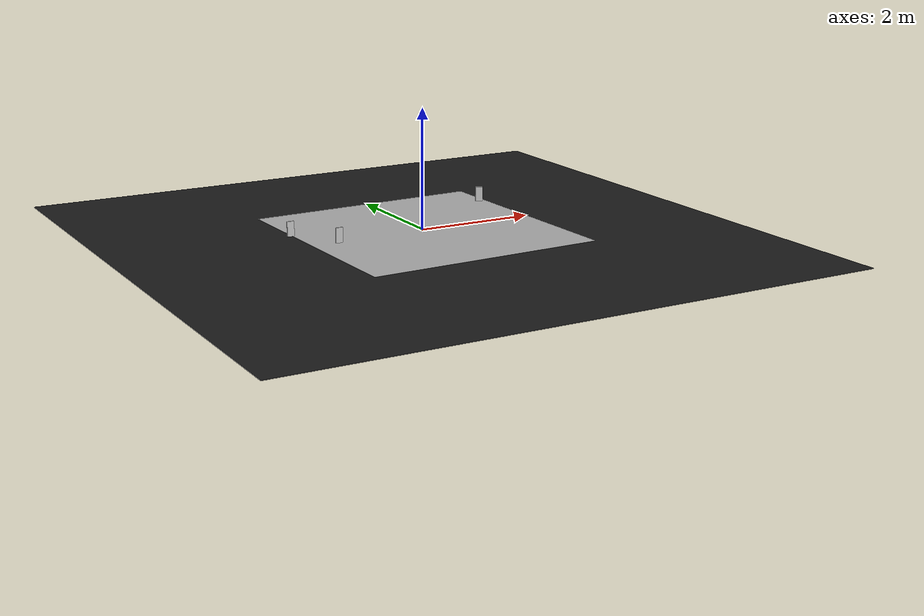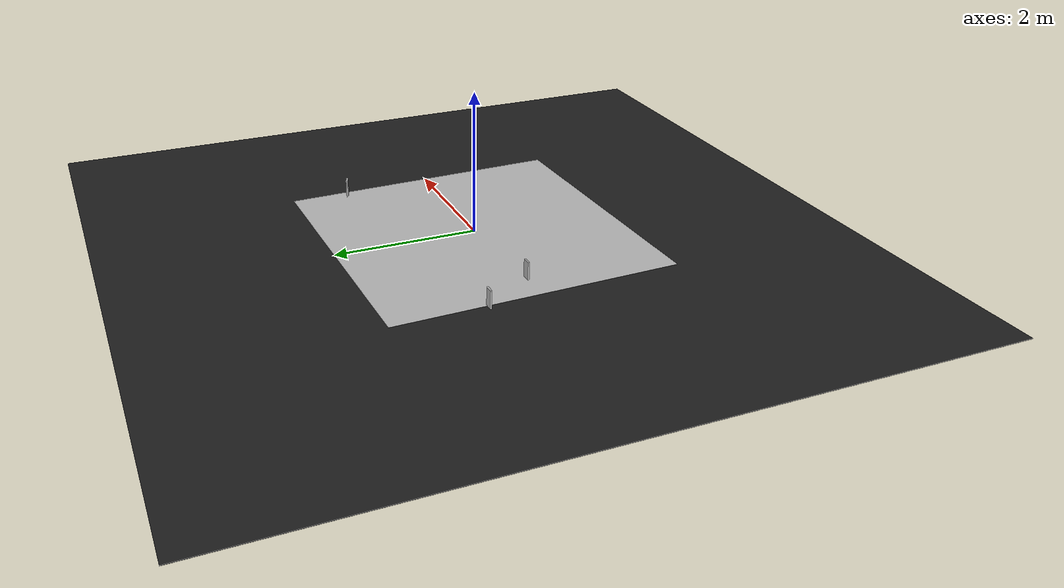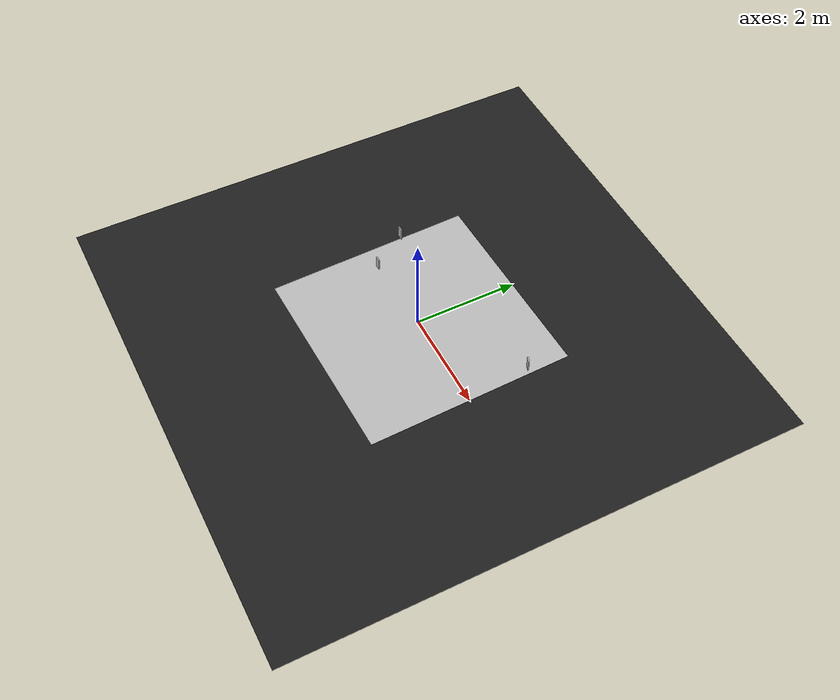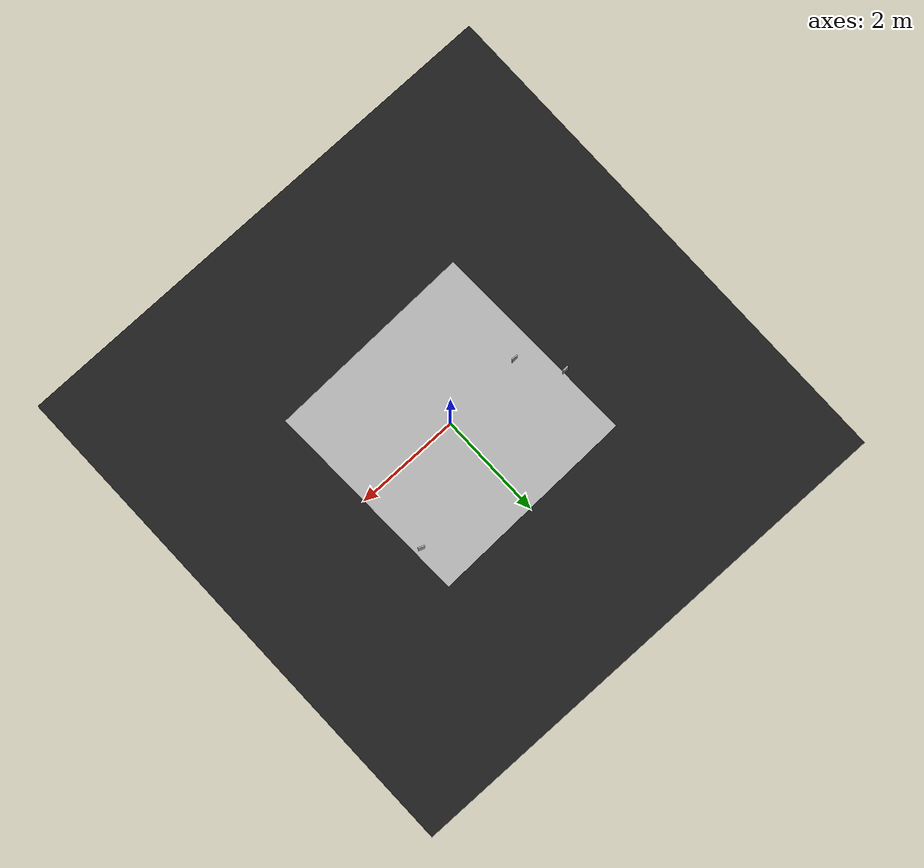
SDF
<sdf version="1.6">
 <world name="default">
  <scene>
   <ambient>0 0 0 1</ambient>
   <shadows>0</shadows>
   <grid>0</grid>
   <background>0.7 0.7 0.7 1</background>
  </scene>
  <model name="course">
   <static>1</static>
   <link name="course_link">
    <collision name="course_collision">
     <geometry><plane><normal>0 0 1</normal><size>4 4</size></plane></geometry>
     <surface><friction><ode><mu>100</mu><mu2>50</mu2></ode></friction></surface>
    </collision>
    <visual name="course_visual">
     <cast_shadows>0</cast_shadows>
     <geometry><plane><normal>0 0 1</normal><size>4 4</size></plane></geometry>
     <material>
      <script>
       <uri>model://turtlebot3_autorace/course/materials/scripts</uri>
       <uri>model://turtlebot3_autorace/course/materials/textures</uri>
       <name>course</name>
      </script>
     </material>
    </visual>
   </link>
   <pose>0 0 0 0 0 -1.54</pose>
  </model>
  <model name="traffic_parking">
   <static>1</static>
   <link name="box">
    <collision name="collision"><geometry><box><size>0.12 0.025 0.25</size></box></geometry></collision>
    <visual name="visual">
     <geometry><box><size>0.12 0.025 0.25</size></box></geometry>
     <material>
      <script>
       <uri>model://turtlebot3_autorace/traffic_parking/materials/scripts</uri>
       <uri>model://turtlebot3_autorace/traffic_parking/materials/textures</uri>
       <name>traffic_parking</name>
      </script>
     </material>
    </visual>
   </link>
   <pose>1.84 1.27 0.13 0 0 -0.356</pose>
  </model>
  <model name="traffic_tunnel">
   <pose>-1.544 -0.08 0.125 -2e-06 3e-06 1.2e-05</pose>
   <link name="box">
    <collision name="collision"><geometry><box><size>0.12 0.025 0.25</size></box></geometry></collision>
    <visual name="visual">
     <geometry><box><size>0.12 0.025 0.25</size></box></geometry>
     <material>
      <script>
       <uri>model://turtlebot3_autorace/traffic_tunnel/materials/scripts</uri>
       <uri>model://turtlebot3_autorace/traffic_tunnel/materials/textures</uri>
       <name>traffic_tunnel</name>
      </script>
     </material>
    </visual>
    <inertial>
     <inertia><ixx>1</ixx><ixy>0</ixy><ixz>0</ixz><iyy>1</iyy><iyz>0</iyz><izz>1</izz></inertia>
     <mass>1</mass>
    </inertial>
   </link>
  </model>
  <model name="traffic_stop">
   <static>1</static>
   <link name="box">
    <collision name="collision"><geometry><box><size>0.12 0.025 0.25</size></box></geometry></collision>
    <visual name="visual">
     <geometry><box><size>0.12 0.025 0.25</size></box></geometry>
     <material>
      <script>
       <uri>model://turtlebot3_autorace/traffic_stop/materials/scripts</uri>
       <uri>model://turtlebot3_autorace/traffic_stop/materials/textures</uri>
       <name>traffic_stop</name>
      </script>
     </material>
    </visual>
   </link>
   <pose>-2.05 0.65 0.125 0 -0 0</pose>
  </model>
  <light name="sun" type="directional">
   <pose>0 0 10 0 -0 0</pose>
   <diffuse>0.8 0.8 0.8 1</diffuse>
   <specular>0.1 0.1 0.1 1</specular>
   <attenuation>
    <range>1000</range>
    <constant>0.9</constant>
    <linear>0.01</linear>
    <quadratic>0.001</quadratic>
   </attenuation>
   <direction>-0.5 0.5 -1</direction>
  </light>
  <model name="ground2">
   <pose>0 0 -0.1 0 -0 0</pose>
   <static>1</static>
   <link name="ground">
    <collision name="ground_coll"><geometry><box><size>8 8 0.01</size></box></geometry></collision>
    <visual name="ground_vis">
     <geometry><box><size>10 10 0.01</size></box></geometry>
     <material>
      <script><uri>file://media/materials/scripts/gazebo.material</uri><name>Gazebo/FlatBlack</name></script>
     </material>
    </visual>
   </link>
  </model>
  <gravity>0 0 -9.8</gravity>
  <magnetic_field>6e-06 2.3e-05 -4.2e-05</magnetic_field>
  <atmosphere type="adiabatic"/>
  <physics name="default_physics" default="0" type="ode">
   <max_step_size>0.001</max_step_size>
   <real_time_factor>1</real_time_factor>
   <real_time_update_rate>1000</real_time_update_rate>
  </physics>
  <spherical_coordinates>
   <surface_model>EARTH_WGS84</surface_model>
   <latitude_deg>0</latitude_deg>
   <longitude_deg>0</longitude_deg>
   <elevation>0</elevation>
   <heading_deg>0</heading_deg>
  </spherical_coordinates>
  <light name="user_point_light_2" type="point">
   <pose>-0.948146 0.604519 1 0 -0 0</pose>
   <diffuse>0.5 0.5 0.5 1</diffuse>
   <specular>0.1 0.1 0.1 1</specular>
   <attenuation>
    <range>20</range>
    <constant>0.5</constant>
    <linear>0.01</linear>
    <quadratic>0.001</quadratic>
   </attenuation>
   <cast_shadows>0</cast_shadows>
   <direction>0 0 -1</direction>
  </light>
  <light name="user_point_light_6" type="point">
   <pose>1.63854 1.69565 1 0 -0 0</pose>
   <diffuse>0.5 0.5 0.5 1</diffuse>
   <specular>0.1 0.1 0.1 1</specular>
   <attenuation>
    <range>20</range>
    <constant>0.5</constant>
    <linear>0.01</linear>
    <quadratic>0.001</quadratic>
   </attenuation>
   <cast_shadows>0</cast_shadows>
   <direction>0 0 -1</direction>
  </light>
  <light name="user_point_light_7" type="point">
   <pose>0.42 -3.31 1 0 -0 0</pose>
   <diffuse>0.5 0.5 0.5 1</diffuse>
   <specular>0.1 0.1 0.1 1</specular>
   <attenuation>
    <range>20</range>
    <constant>0.5</constant>
    <linear>0.01</linear>
    <quadratic>0.001</quadratic>
   </attenuation>
   <cast_shadows>0</cast_shadows>
   <direction>0 0 -1</direction>
  </light>
  <light name="user_point_light_8" type="point">
   <pose>-1.8 1.5 1 0 -0 0</pose>
   <diffuse>0.5 0.5 0.5 1</diffuse>
   <specular>0.1 0.1 0.1 1</specular>
   <attenuation>
    <range>20</range>
    <constant>0.5</constant>
    <linear>0.01</linear>
    <quadratic>0.001</quadratic>
   </attenuation>
   <cast_shadows>0</cast_shadows>
   <direction>0 0 -1</direction>
  </light>
 </world>
</sdf>
